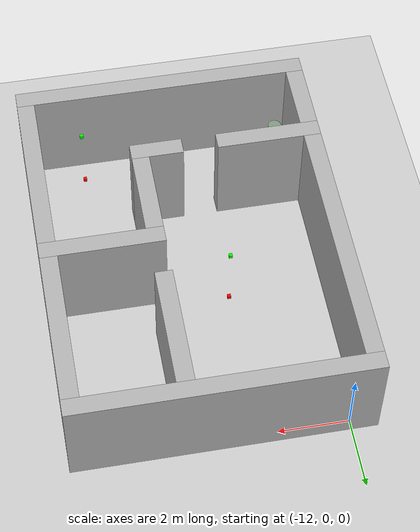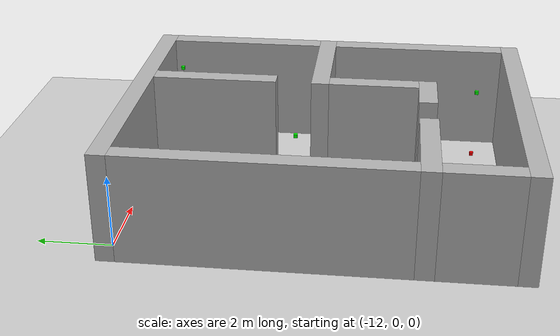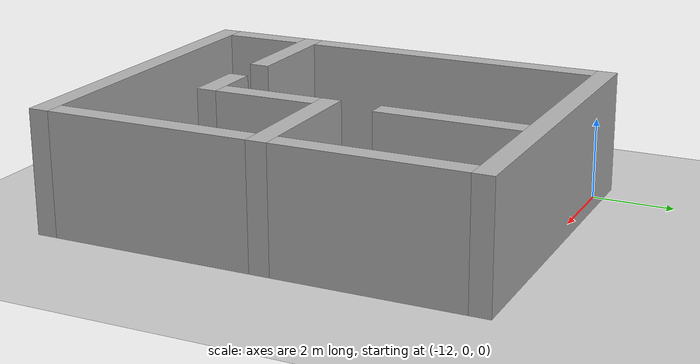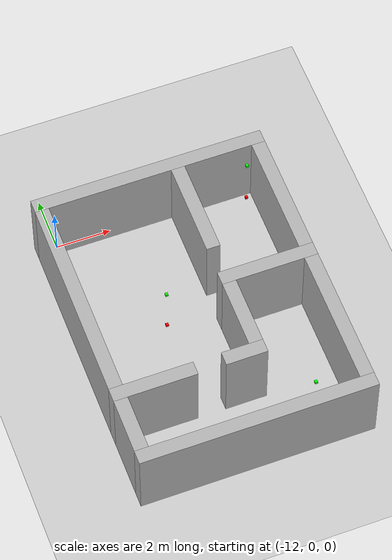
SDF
<sdf version="1.6">
 <world name="default">
  <light name="sun" type="directional">
   <cast_shadows>0</cast_shadows>
   <pose>0 0 10 0 -0 0</pose>
   <diffuse>0.8 0.8 0.8 1</diffuse>
   <specular>0.2 0.2 0.2 1</specular>
   <attenuation>
    <range>1000</range>
    <constant>0.9</constant>
    <linear>0.01</linear>
    <quadratic>0.001</quadratic>
   </attenuation>
   <direction>-0.5 0.1 -0.9</direction>
  </light>
  <include><uri>model://ground_plane</uri></include>
  <gravity>0 0 -9.8</gravity>
  <magnetic_field>6e-06 2.3e-05 -4.2e-05</magnetic_field>
  <atmosphere type="adiabatic"/>
  <physics name="default_physics" default="0" type="ode">
   <max_step_size>0.001</max_step_size>
   <real_time_factor>1</real_time_factor>
   <real_time_update_rate>1000</real_time_update_rate>
  </physics>
  <scene><ambient>0.4 0.4 0.4 1</ambient><background>0.7 0.7 0.7 1</background><shadows>0</shadows></scene>
  <spherical_coordinates>
   <surface_model>EARTH_WGS84</surface_model>
   <latitude_deg>0</latitude_deg>
   <longitude_deg>0</longitude_deg>
   <elevation>0</elevation>
   <heading_deg>0</heading_deg>
  </spherical_coordinates>
  <model name="wall_0">
   <pose frame="sim_world">-12.5 -9.25 1.5 0 0 0</pose>
   <static>True</static>
   <link name="wall_0_link">
    <inertial>
     <mass>100</mass>
     <inertia>
      <ixx>0.166667</ixx>
      <ixy>0</ixy>
      <ixz>0</ixz>
      <iyy>0.166667</iyy>
      <iyz>0</iyz>
      <izz>0.166667</izz>
     </inertia>
    </inertial>
    <collision name="wall_0_collision">
     <geometry><box><size>0.5 2.0 3.0</size></box></geometry>
     <max_contacts>100</max_contacts>
    </collision>
    <visual name="wall_0_visual">
     <geometry><box><size>0.5 2.0 3.0</size></box></geometry>
     <material><ambient>0.7 0.7 0.7 1</ambient><diffuse>0.7 0.7 0.7 1</diffuse></material>
    </visual>
   </link>
  </model>
  <model name="wall_1">
   <pose frame="sim_world">-12.5 -4.0 1.5 0 0 0</pose>
   <static>True</static>
   <link name="wall_1_link">
    <inertial>
     <mass>100</mass>
     <inertia>
      <ixx>0.166667</ixx>
      <ixy>0</ixy>
      <ixz>0</ixz>
      <iyy>0.166667</iyy>
      <iyz>0</iyz>
      <izz>0.166667</izz>
     </inertia>
    </inertial>
    <collision name="wall_1_collision">
     <geometry><box><size>0.5 7.5 3.0</size></box></geometry>
     <max_contacts>100</max_contacts>
    </collision>
    <visual name="wall_1_visual">
     <geometry><box><size>0.5 7.5 3.0</size></box></geometry>
     <material><ambient>0.7 0.7 0.7 1</ambient><diffuse>0.7 0.7 0.7 1</diffuse></material>
    </visual>
   </link>
  </model>
  <model name="wall_2">
   <pose frame="sim_world">-7.5 -6.5 1.5 0 0 0</pose>
   <static>True</static>
   <link name="wall_2_link">
    <inertial>
     <mass>100</mass>
     <inertia>
      <ixx>0.166667</ixx>
      <ixy>0</ixy>
      <ixz>0</ixz>
      <iyy>0.166667</iyy>
      <iyz>0</iyz>
      <izz>0.166667</izz>
     </inertia>
    </inertial>
    <collision name="wall_2_collision">
     <geometry><box><size>0.5 2.5 3.0</size></box></geometry>
     <max_contacts>100</max_contacts>
    </collision>
    <visual name="wall_2_visual">
     <geometry><box><size>0.5 2.5 3.0</size></box></geometry>
     <material><ambient>0.7 0.7 0.7 1</ambient><diffuse>0.7 0.7 0.7 1</diffuse></material>
    </visual>
   </link>
  </model>
  <model name="wall_3">
   <pose frame="sim_world">-7.5 -2.0 1.5 0 0 0</pose>
   <static>True</static>
   <link name="wall_3_link">
    <inertial>
     <mass>100</mass>
     <inertia>
      <ixx>0.166667</ixx>
      <ixy>0</ixy>
      <ixz>0</ixz>
      <iyy>0.166667</iyy>
      <iyz>0</iyz>
      <izz>0.166667</izz>
     </inertia>
    </inertial>
    <collision name="wall_3_collision">
     <geometry><box><size>0.5 3.5 3.0</size></box></geometry>
     <max_contacts>100</max_contacts>
    </collision>
    <visual name="wall_3_visual">
     <geometry><box><size>0.5 3.5 3.0</size></box></geometry>
     <material><ambient>0.7 0.7 0.7 1</ambient><diffuse>0.7 0.7 0.7 1</diffuse></material>
    </visual>
   </link>
  </model>
  <model name="wall_4">
   <pose frame="sim_world">-4.5 -7.75 1.5 0 0 0</pose>
   <static>True</static>
   <link name="wall_4_link">
    <inertial>
     <mass>100</mass>
     <inertia>
      <ixx>0.166667</ixx>
      <ixy>0</ixy>
      <ixz>0</ixz>
      <iyy>0.166667</iyy>
      <iyz>0</iyz>
      <izz>0.166667</izz>
     </inertia>
    </inertial>
    <collision name="wall_4_collision">
     <geometry><box><size>0.5 5.0 3.0</size></box></geometry>
     <max_contacts>100</max_contacts>
    </collision>
    <visual name="wall_4_visual">
     <geometry><box><size>0.5 5.0 3.0</size></box></geometry>
     <material><ambient>0.7 0.7 0.7 1</ambient><diffuse>0.7 0.7 0.7 1</diffuse></material>
    </visual>
   </link>
  </model>
  <model name="wall_5">
   <pose frame="sim_world">-4.5 -2.5 1.5 0 0 0</pose>
   <static>True</static>
   <link name="wall_5_link">
    <inertial>
     <mass>100</mass>
     <inertia>
      <ixx>0.166667</ixx>
      <ixy>0</ixy>
      <ixz>0</ixz>
      <iyy>0.166667</iyy>
      <iyz>0</iyz>
      <izz>0.166667</izz>
     </inertia>
    </inertial>
    <collision name="wall_5_collision">
     <geometry><box><size>0.5 4.5 3.0</size></box></geometry>
     <max_contacts>100</max_contacts>
    </collision>
    <visual name="wall_5_visual">
     <geometry><box><size>0.5 4.5 3.0</size></box></geometry>
     <material><ambient>0.7 0.7 0.7 1</ambient><diffuse>0.7 0.7 0.7 1</diffuse></material>
    </visual>
   </link>
  </model>
  <model name="wall_6">
   <pose frame="sim_world">-8.5 -10.5 1.5 0 0 0</pose>
   <static>True</static>
   <link name="wall_6_link">
    <inertial>
     <mass>100</mass>
     <inertia>
      <ixx>0.166667</ixx>
      <ixy>0</ixy>
      <ixz>0</ixz>
      <iyy>0.166667</iyy>
      <iyz>0</iyz>
      <izz>0.166667</izz>
     </inertia>
    </inertial>
    <collision name="wall_6_collision">
     <geometry><box><size>8.5 0.5 3.0</size></box></geometry>
     <max_contacts>100</max_contacts>
    </collision>
    <visual name="wall_6_visual">
     <geometry><box><size>8.5 0.5 3.0</size></box></geometry>
     <material><ambient>0.7 0.7 0.7 1</ambient><diffuse>0.7 0.7 0.7 1</diffuse></material>
    </visual>
   </link>
  </model>
  <model name="wall_7">
   <pose frame="sim_world">-11.25 -8.0 1.5 0 0 0</pose>
   <static>True</static>
   <link name="wall_7_link">
    <inertial>
     <mass>100</mass>
     <inertia>
      <ixx>0.166667</ixx>
      <ixy>0</ixy>
      <ixz>0</ixz>
      <iyy>0.166667</iyy>
      <iyz>0</iyz>
      <izz>0.166667</izz>
     </inertia>
    </inertial>
    <collision name="wall_7_collision">
     <geometry><box><size>3.0 0.5 3.0</size></box></geometry>
     <max_contacts>100</max_contacts>
    </collision>
    <visual name="wall_7_visual">
     <geometry><box><size>3.0 0.5 3.0</size></box></geometry>
     <material><ambient>0.7 0.7 0.7 1</ambient><diffuse>0.7 0.7 0.7 1</diffuse></material>
    </visual>
   </link>
  </model>
  <model name="wall_8">
   <pose frame="sim_world">-8.0 -8.0 1.5 0 0 0</pose>
   <static>True</static>
   <link name="wall_8_link">
    <inertial>
     <mass>100</mass>
     <inertia>
      <ixx>0.166667</ixx>
      <ixy>0</ixy>
      <ixz>0</ixz>
      <iyy>0.166667</iyy>
      <iyz>0</iyz>
      <izz>0.166667</izz>
     </inertia>
    </inertial>
    <collision name="wall_8_collision">
     <geometry><box><size>1.5 0.5 3.0</size></box></geometry>
     <max_contacts>100</max_contacts>
    </collision>
    <visual name="wall_8_visual">
     <geometry><box><size>1.5 0.5 3.0</size></box></geometry>
     <material><ambient>0.7 0.7 0.7 1</ambient><diffuse>0.7 0.7 0.7 1</diffuse></material>
    </visual>
   </link>
  </model>
  <model name="wall_9">
   <pose frame="sim_world">-6.0 -5.0 1.5 0 0 0</pose>
   <static>True</static>
   <link name="wall_9_link">
    <inertial>
     <mass>100</mass>
     <inertia>
      <ixx>0.166667</ixx>
      <ixy>0</ixy>
      <ixz>0</ixz>
      <iyy>0.166667</iyy>
      <iyz>0</iyz>
      <izz>0.166667</izz>
     </inertia>
    </inertial>
    <collision name="wall_9_collision">
     <geometry><box><size>3.5 0.5 3.0</size></box></geometry>
     <max_contacts>100</max_contacts>
    </collision>
    <visual name="wall_9_visual">
     <geometry><box><size>3.5 0.5 3.0</size></box></geometry>
     <material><ambient>0.7 0.7 0.7 1</ambient><diffuse>0.7 0.7 0.7 1</diffuse></material>
    </visual>
   </link>
  </model>
  <model name="wall_10">
   <pose frame="sim_world">-8.5 0.0 1.5 0 0 0</pose>
   <static>True</static>
   <link name="wall_10_link">
    <inertial>
     <mass>100</mass>
     <inertia>
      <ixx>0.166667</ixx>
      <ixy>0</ixy>
      <ixz>0</ixz>
      <iyy>0.166667</iyy>
      <iyz>0</iyz>
      <izz>0.166667</izz>
     </inertia>
    </inertial>
    <collision name="wall_10_collision">
     <geometry><box><size>8.5 0.5 3.0</size></box></geometry>
     <max_contacts>100</max_contacts>
    </collision>
    <visual name="wall_10_visual">
     <geometry><box><size>8.5 0.5 3.0</size></box></geometry>
     <material><ambient>0.7 0.7 0.7 1</ambient><diffuse>0.7 0.7 0.7 1</diffuse></material>
    </visual>
   </link>
  </model>
  <model name="cylinder_0">
   <pose frame="sim_world">-11.9696069073 -10.044753982 0.15 0 -0 0</pose>
   <static>True</static>
   <link name="cylinder_0_link">
    <inertial>
     <mass>100</mass>
     <inertia><ixx>0.145833</ixx><ixy>0</ixy><ixz>0</ixz><iyy>0.145833</iyy><iyz>0</iyz><izz>0.125</izz></inertia>
    </inertial>
    <collision name="cylinder_0_collision">
     <geometry><cylinder><length>0.3</length><radius>0.2</radius></cylinder></geometry>
     <max_contacts>100</max_contacts>
    </collision>
    <visual name="cylinder_0_visual">
     <geometry><cylinder><length>0.3</length><radius>0.2</radius></cylinder></geometry>
     <material><ambient>0.5 0.6 0.5 1</ambient><diffuse>0.5 0.6 0.5 1</diffuse></material>
    </visual>
   </link>
  </model>
  <model name="cylinder_1">
   <pose frame="sim_world">-11.9589823271 -10.0349172031 0.45 0 -0 0</pose>
   <static>True</static>
   <link name="cylinder_1_link">
    <inertial>
     <mass>100</mass>
     <inertia><ixx>0.145833</ixx><ixy>0</ixy><ixz>0</ixz><iyy>0.145833</iyy><iyz>0</iyz><izz>0.125</izz></inertia>
    </inertial>
    <collision name="cylinder_1_collision">
     <geometry><cylinder><length>0.3</length><radius>0.2</radius></cylinder></geometry>
     <max_contacts>100</max_contacts>
    </collision>
    <visual name="cylinder_1_visual">
     <geometry><cylinder><length>0.3</length><radius>0.2</radius></cylinder></geometry>
     <material><ambient>0.5 0.6 0.5 1</ambient><diffuse>0.5 0.6 0.5 1</diffuse></material>
    </visual>
   </link>
  </model>
  <model name="cylinder_2">
   <pose frame="sim_world">-11.9657817304 -10.0372251532 0.75 0 -0 0</pose>
   <static>True</static>
   <link name="cylinder_2_link">
    <inertial>
     <mass>100</mass>
     <inertia><ixx>0.145833</ixx><ixy>0</ixy><ixz>0</ixz><iyy>0.145833</iyy><iyz>0</iyz><izz>0.125</izz></inertia>
    </inertial>
    <collision name="cylinder_2_collision">
     <geometry><cylinder><length>0.3</length><radius>0.2</radius></cylinder></geometry>
     <max_contacts>100</max_contacts>
    </collision>
    <visual name="cylinder_2_visual">
     <geometry><cylinder><length>0.3</length><radius>0.2</radius></cylinder></geometry>
     <material><ambient>0.5 0.6 0.5 1</ambient><diffuse>0.5 0.6 0.5 1</diffuse></material>
    </visual>
   </link>
  </model>
  <model name="cylinder_3">
   <pose frame="sim_world">-11.9970596544 -9.54814741846 0.15 0 -0 0</pose>
   <static>True</static>
   <link name="cylinder_3_link">
    <inertial>
     <mass>100</mass>
     <inertia><ixx>0.145833</ixx><ixy>0</ixy><ixz>0</ixz><iyy>0.145833</iyy><iyz>0</iyz><izz>0.125</izz></inertia>
    </inertial>
    <collision name="cylinder_3_collision">
     <geometry><cylinder><length>0.3</length><radius>0.2</radius></cylinder></geometry>
     <max_contacts>100</max_contacts>
    </collision>
    <visual name="cylinder_3_visual">
     <geometry><cylinder><length>0.3</length><radius>0.2</radius></cylinder></geometry>
     <material><ambient>0.5 0.6 0.5 1</ambient><diffuse>0.5 0.6 0.5 1</diffuse></material>
    </visual>
   </link>
  </model>
  <model name="cylinder_4">
   <pose frame="sim_world">-11.9944486405 -9.53550633875 0.45 0 -0 0</pose>
   <static>True</static>
   <link name="cylinder_4_link">
    <inertial>
     <mass>100</mass>
     <inertia><ixx>0.145833</ixx><ixy>0</ixy><ixz>0</ixz><iyy>0.145833</iyy><iyz>0</iyz><izz>0.125</izz></inertia>
    </inertial>
    <collision name="cylinder_4_collision">
     <geometry><cylinder><length>0.3</length><radius>0.2</radius></cylinder></geometry>
     <max_contacts>100</max_contacts>
    </collision>
    <visual name="cylinder_4_visual">
     <geometry><cylinder><length>0.3</length><radius>0.2</radius></cylinder></geometry>
     <material><ambient>0.5 0.6 0.5 1</ambient><diffuse>0.5 0.6 0.5 1</diffuse></material>
    </visual>
   </link>
  </model>
  <model name="cylinder_5">
   <pose frame="sim_world">-11.9462256939 -8.99295501976 0.15 0 -0 0</pose>
   <static>True</static>
   <link name="cylinder_5_link">
    <inertial>
     <mass>100</mass>
     <inertia><ixx>0.145833</ixx><ixy>0</ixy><ixz>0</ixz><iyy>0.145833</iyy><iyz>0</iyz><izz>0.125</izz></inertia>
    </inertial>
    <collision name="cylinder_5_collision">
     <geometry><cylinder><length>0.3</length><radius>0.2</radius></cylinder></geometry>
     <max_contacts>100</max_contacts>
    </collision>
    <visual name="cylinder_5_visual">
     <geometry><cylinder><length>0.3</length><radius>0.2</radius></cylinder></geometry>
     <material><ambient>0.5 0.6 0.5 1</ambient><diffuse>0.5 0.6 0.5 1</diffuse></material>
    </visual>
   </link>
  </model>
  <model name="source_8">
   <pose>-9.5 -4.5 0.2 0 -0 0.0</pose>
   <static>true</static>
   <link name="link_source_8">
    <visual name="visual_source_8">
     <geometry><box><size>0.1 0.1 0.1</size></box></geometry>
     <material><ambient>1 0.0  0 1.0</ambient><diffuse>1 0.0  0 1.0</diffuse></material>
    </visual>
    <visual name="visual_source_8_1">
     <pose>0 0 2.0 0 0 0</pose>
     <geometry><box><size>0.1 0.1 0.1</size></box></geometry>
     <material><ambient>0 1.0  0 1.0</ambient><diffuse>0 1.0  0 1.0</diffuse></material>
    </visual>
    <sensor name="source_8" type="radiation_source">
     <always_on>1</always_on>
     <update_rate>100.0</update_rate>
     <topic>source_8_0/gamma</topic>
     <plugin filename="libradiation_source_plugin.so" name="radiation_source_plugin"/>
    </sensor>
   </link>
  </model>
  <model name="source_12">
   <pose>-6.0 -9.5 0.2 0 -0 0.0</pose>
   <static>true</static>
   <link name="link_source_12">
    <visual name="visual_source_12">
     <geometry><box><size>0.1 0.1 0.1</size></box></geometry>
     <material><ambient>1 0.0  0 1.0</ambient><diffuse>1 0.0  0 1.0</diffuse></material>
    </visual>
    <visual name="visual_source_12_1">
     <pose>0 0 2.0 0 0 0</pose>
     <geometry><box><size>0.1 0.1 0.1</size></box></geometry>
     <material><ambient>0 1.0  0 1.0</ambient><diffuse>0 1.0  0 1.0</diffuse></material>
    </visual>
    <sensor name="source_12" type="radiation_source">
     <always_on>1</always_on>
     <update_rate>100.0</update_rate>
     <topic>source_12_0/gamma</topic>
     <plugin filename="libradiation_source_plugin.so" name="radiation_source_plugin"/>
    </sensor>
   </link>
  </model>
  <model name="source_15">
   <pose>-5.0 -0.5 0.2 0 -0 0.0</pose>
   <static>true</static>
   <link name="link_source_15">
    <visual name="visual_source_15">
     <geometry><box><size>0.1 0.1 0.1</size></box></geometry>
     <material><ambient>1 0.0  0 1.0</ambient><diffuse>1 0.0  0 1.0</diffuse></material>
    </visual>
    <visual name="visual_source_15_1">
     <pose>0 0 2.0 0 0 0</pose>
     <geometry><box><size>0.1 0.1 0.1</size></box></geometry>
     <material><ambient>0 1.0  0 1.0</ambient><diffuse>0 1.0  0 1.0</diffuse></material>
    </visual>
    <sensor name="source_15" type="radiation_source">
     <always_on>1</always_on>
     <update_rate>100.0</update_rate>
     <topic>source_15_0/gamma</topic>
     <plugin filename="libradiation_source_plugin.so" name="radiation_source_plugin"/>
    </sensor>
   </link>
  </model>
  <include><uri>model://ground_plane</uri></include>
  <model name="ground_plane"><link name="ground_plane"/></model>
 </world>
</sdf>
